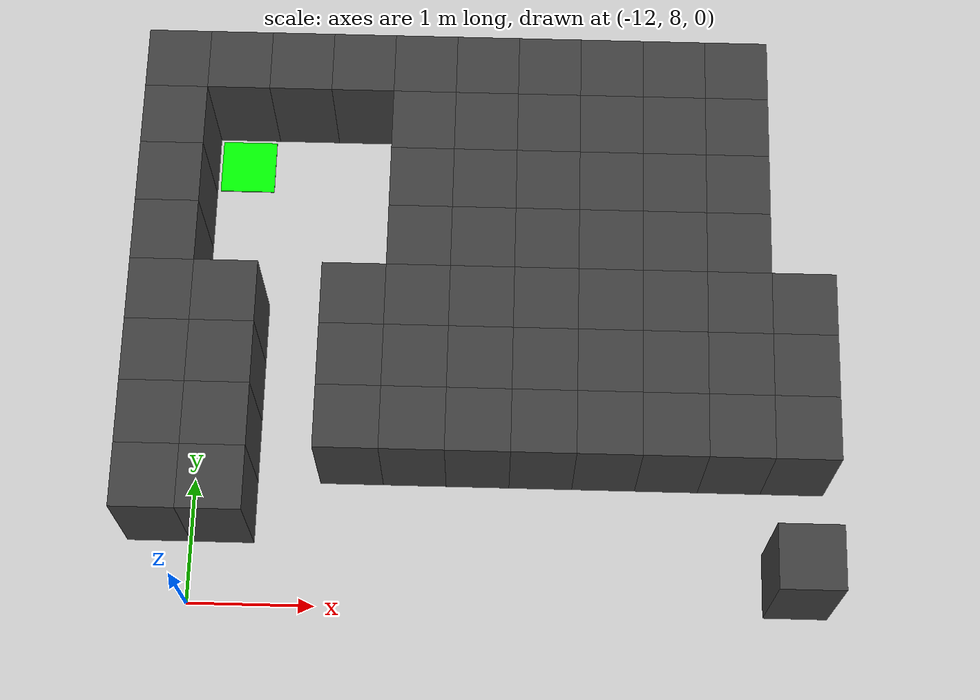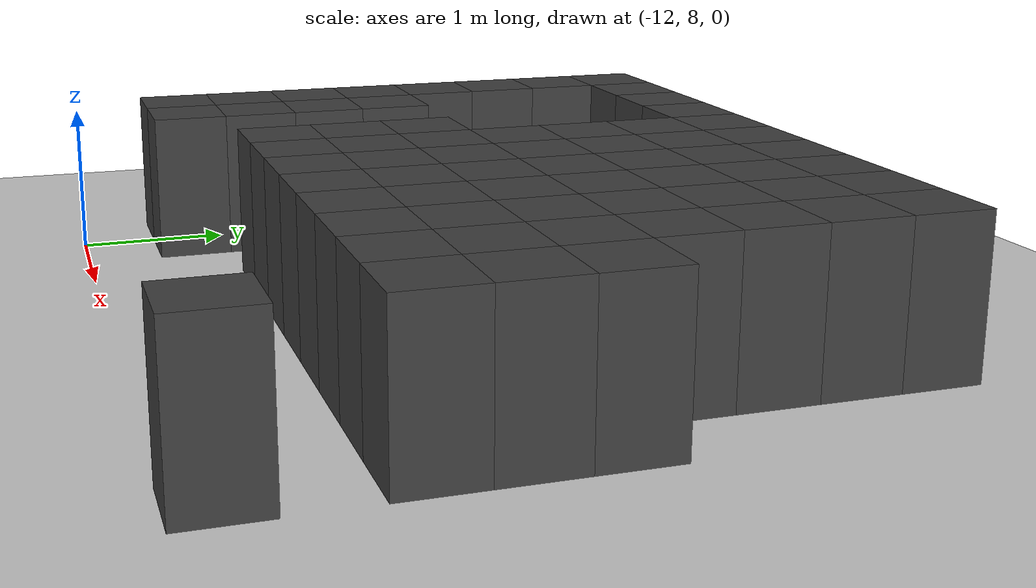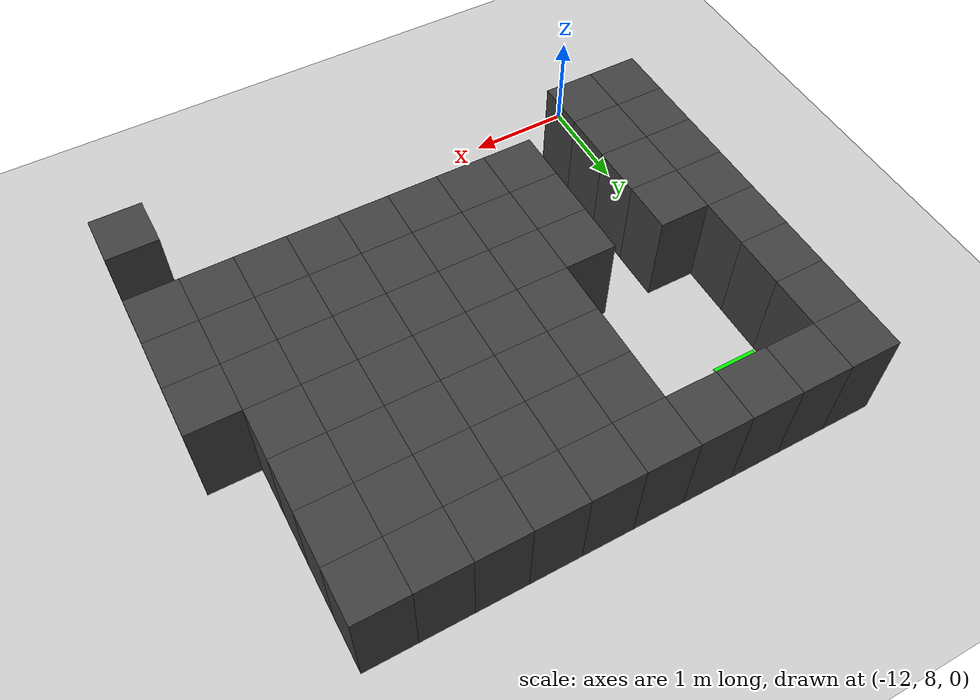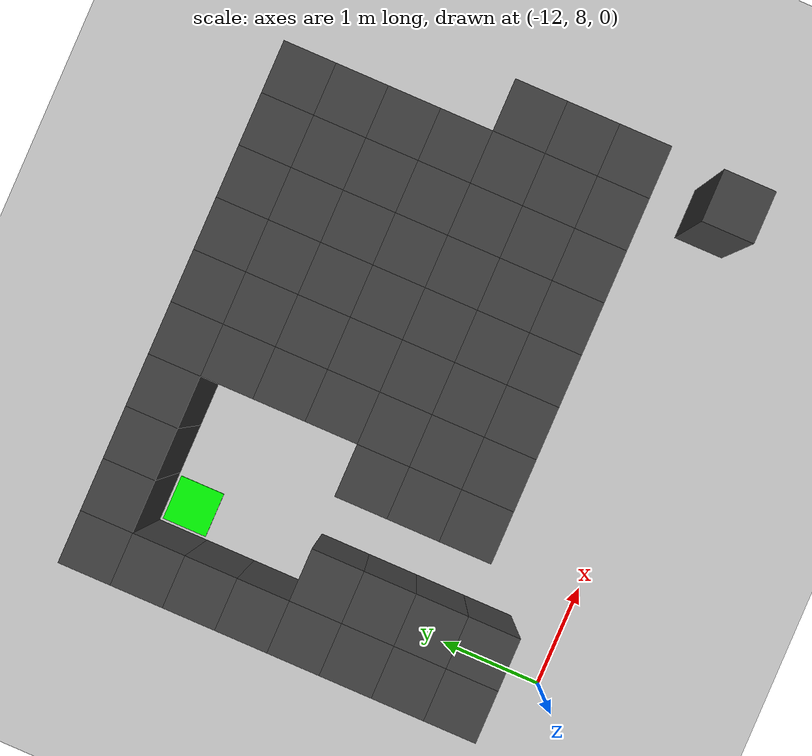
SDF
<sdf version="1.7">
 <world name="map_11515">
  <model name="ground_plane">
   <static>true</static>
   <link name="link">
    <collision name="collision">
     <geometry><plane><normal>0 0 1</normal><size>200 200</size></plane></geometry>
    </collision>
    <visual name="visual">
     <geometry><plane><normal>0 0 1</normal><size>200 200</size></plane></geometry>
     <material><ambient>0.8 0.8 0.8 1</ambient><diffuse>0.8 0.8 0.8 1</diffuse></material>
    </visual>
   </link>
  </model>
  <model name="maze_environment">
   <static>true</static>
   <link name="wall_0">
    <pose>-12.250 12.250 0.500 0 0 0</pose>
    <collision name="col"><geometry><box><size>0.5 0.5 1.0</size></box></geometry></collision>
    <visual name="vis">
     <geometry><box><size>0.5 0.5 1.0</size></box></geometry>
     <material><ambient>0.15 0.15 0.15 1</ambient><diffuse>0.25 0.25 0.25 1</diffuse></material>
    </visual>
   </link>
   <link name="wall_1">
    <pose>-11.750 12.250 0.500 0 0 0</pose>
    <collision name="col"><geometry><box><size>0.5 0.5 1.0</size></box></geometry></collision>
    <visual name="vis">
     <geometry><box><size>0.5 0.5 1.0</size></box></geometry>
     <material><ambient>0.15 0.15 0.15 1</ambient><diffuse>0.25 0.25 0.25 1</diffuse></material>
    </visual>
   </link>
   <link name="wall_2">
    <pose>-11.250 12.250 0.500 0 0 0</pose>
    <collision name="col"><geometry><box><size>0.5 0.5 1.0</size></box></geometry></collision>
    <visual name="vis">
     <geometry><box><size>0.5 0.5 1.0</size></box></geometry>
     <material><ambient>0.15 0.15 0.15 1</ambient><diffuse>0.25 0.25 0.25 1</diffuse></material>
    </visual>
   </link>
   <link name="wall_3">
    <pose>-10.750 12.250 0.500 0 0 0</pose>
    <collision name="col"><geometry><box><size>0.5 0.5 1.0</size></box></geometry></collision>
    <visual name="vis">
     <geometry><box><size>0.5 0.5 1.0</size></box></geometry>
     <material><ambient>0.15 0.15 0.15 1</ambient><diffuse>0.25 0.25 0.25 1</diffuse></material>
    </visual>
   </link>
   <link name="wall_4">
    <pose>-10.250 12.250 0.500 0 0 0</pose>
    <collision name="col"><geometry><box><size>0.5 0.5 1.0</size></box></geometry></collision>
    <visual name="vis">
     <geometry><box><size>0.5 0.5 1.0</size></box></geometry>
     <material><ambient>0.15 0.15 0.15 1</ambient><diffuse>0.25 0.25 0.25 1</diffuse></material>
    </visual>
   </link>
   <link name="wall_5">
    <pose>-9.750 12.250 0.500 0 0 0</pose>
    <collision name="col"><geometry><box><size>0.5 0.5 1.0</size></box></geometry></collision>
    <visual name="vis">
     <geometry><box><size>0.5 0.5 1.0</size></box></geometry>
     <material><ambient>0.15 0.15 0.15 1</ambient><diffuse>0.25 0.25 0.25 1</diffuse></material>
    </visual>
   </link>
   <link name="wall_6">
    <pose>-9.250 12.250 0.500 0 0 0</pose>
    <collision name="col"><geometry><box><size>0.5 0.5 1.0</size></box></geometry></collision>
    <visual name="vis">
     <geometry><box><size>0.5 0.5 1.0</size></box></geometry>
     <material><ambient>0.15 0.15 0.15 1</ambient><diffuse>0.25 0.25 0.25 1</diffuse></material>
    </visual>
   </link>
   <link name="wall_7">
    <pose>-8.750 12.250 0.500 0 0 0</pose>
    <collision name="col"><geometry><box><size>0.5 0.5 1.0</size></box></geometry></collision>
    <visual name="vis">
     <geometry><box><size>0.5 0.5 1.0</size></box></geometry>
     <material><ambient>0.15 0.15 0.15 1</ambient><diffuse>0.25 0.25 0.25 1</diffuse></material>
    </visual>
   </link>
   <link name="wall_8">
    <pose>-8.250 12.250 0.500 0 0 0</pose>
    <collision name="col"><geometry><box><size>0.5 0.5 1.0</size></box></geometry></collision>
    <visual name="vis">
     <geometry><box><size>0.5 0.5 1.0</size></box></geometry>
     <material><ambient>0.15 0.15 0.15 1</ambient><diffuse>0.25 0.25 0.25 1</diffuse></material>
    </visual>
   </link>
   <link name="wall_9">
    <pose>-7.750 12.250 0.500 0 0 0</pose>
    <collision name="col"><geometry><box><size>0.5 0.5 1.0</size></box></geometry></collision>
    <visual name="vis">
     <geometry><box><size>0.5 0.5 1.0</size></box></geometry>
     <material><ambient>0.15 0.15 0.15 1</ambient><diffuse>0.25 0.25 0.25 1</diffuse></material>
    </visual>
   </link>
   <link name="wall_50">
    <pose>-12.250 11.750 0.500 0 0 0</pose>
    <collision name="col"><geometry><box><size>0.5 0.5 1.0</size></box></geometry></collision>
    <visual name="vis">
     <geometry><box><size>0.5 0.5 1.0</size></box></geometry>
     <material><ambient>0.15 0.15 0.15 1</ambient><diffuse>0.25 0.25 0.25 1</diffuse></material>
    </visual>
   </link>
   <link name="wall_51">
    <pose>-10.250 11.750 0.500 0 0 0</pose>
    <collision name="col"><geometry><box><size>0.5 0.5 1.0</size></box></geometry></collision>
    <visual name="vis">
     <geometry><box><size>0.5 0.5 1.0</size></box></geometry>
     <material><ambient>0.15 0.15 0.15 1</ambient><diffuse>0.25 0.25 0.25 1</diffuse></material>
    </visual>
   </link>
   <link name="wall_52">
    <pose>-9.750 11.750 0.500 0 0 0</pose>
    <collision name="col"><geometry><box><size>0.5 0.5 1.0</size></box></geometry></collision>
    <visual name="vis">
     <geometry><box><size>0.5 0.5 1.0</size></box></geometry>
     <material><ambient>0.15 0.15 0.15 1</ambient><diffuse>0.25 0.25 0.25 1</diffuse></material>
    </visual>
   </link>
   <link name="wall_53">
    <pose>-9.250 11.750 0.500 0 0 0</pose>
    <collision name="col"><geometry><box><size>0.5 0.5 1.0</size></box></geometry></collision>
    <visual name="vis">
     <geometry><box><size>0.5 0.5 1.0</size></box></geometry>
     <material><ambient>0.15 0.15 0.15 1</ambient><diffuse>0.25 0.25 0.25 1</diffuse></material>
    </visual>
   </link>
   <link name="wall_54">
    <pose>-8.750 11.750 0.500 0 0 0</pose>
    <collision name="col"><geometry><box><size>0.5 0.5 1.0</size></box></geometry></collision>
    <visual name="vis">
     <geometry><box><size>0.5 0.5 1.0</size></box></geometry>
     <material><ambient>0.15 0.15 0.15 1</ambient><diffuse>0.25 0.25 0.25 1</diffuse></material>
    </visual>
   </link>
   <link name="wall_55">
    <pose>-8.250 11.750 0.500 0 0 0</pose>
    <collision name="col"><geometry><box><size>0.5 0.5 1.0</size></box></geometry></collision>
    <visual name="vis">
     <geometry><box><size>0.5 0.5 1.0</size></box></geometry>
     <material><ambient>0.15 0.15 0.15 1</ambient><diffuse>0.25 0.25 0.25 1</diffuse></material>
    </visual>
   </link>
   <link name="wall_56">
    <pose>-7.750 11.750 0.500 0 0 0</pose>
    <collision name="col"><geometry><box><size>0.5 0.5 1.0</size></box></geometry></collision>
    <visual name="vis">
     <geometry><box><size>0.5 0.5 1.0</size></box></geometry>
     <material><ambient>0.15 0.15 0.15 1</ambient><diffuse>0.25 0.25 0.25 1</diffuse></material>
    </visual>
   </link>
   <link name="wall_97">
    <pose>-12.250 11.250 0.500 0 0 0</pose>
    <collision name="col"><geometry><box><size>0.5 0.5 1.0</size></box></geometry></collision>
    <visual name="vis">
     <geometry><box><size>0.5 0.5 1.0</size></box></geometry>
     <material><ambient>0.15 0.15 0.15 1</ambient><diffuse>0.25 0.25 0.25 1</diffuse></material>
    </visual>
   </link>
   <link name="wall_98">
    <pose>-10.250 11.250 0.500 0 0 0</pose>
    <collision name="col"><geometry><box><size>0.5 0.5 1.0</size></box></geometry></collision>
    <visual name="vis">
     <geometry><box><size>0.5 0.5 1.0</size></box></geometry>
     <material><ambient>0.15 0.15 0.15 1</ambient><diffuse>0.25 0.25 0.25 1</diffuse></material>
    </visual>
   </link>
   <link name="wall_99">
    <pose>-9.750 11.250 0.500 0 0 0</pose>
    <collision name="col"><geometry><box><size>0.5 0.5 1.0</size></box></geometry></collision>
    <visual name="vis">
     <geometry><box><size>0.5 0.5 1.0</size></box></geometry>
     <material><ambient>0.15 0.15 0.15 1</ambient><diffuse>0.25 0.25 0.25 1</diffuse></material>
    </visual>
   </link>
   <link name="wall_100">
    <pose>-9.250 11.250 0.500 0 0 0</pose>
    <collision name="col"><geometry><box><size>0.5 0.5 1.0</size></box></geometry></collision>
    <visual name="vis">
     <geometry><box><size>0.5 0.5 1.0</size></box></geometry>
     <material><ambient>0.15 0.15 0.15 1</ambient><diffuse>0.25 0.25 0.25 1</diffuse></material>
    </visual>
   </link>
   <link name="wall_101">
    <pose>-8.750 11.250 0.500 0 0 0</pose>
    <collision name="col"><geometry><box><size>0.5 0.5 1.0</size></box></geometry></collision>
    <visual name="vis">
     <geometry><box><size>0.5 0.5 1.0</size></box></geometry>
     <material><ambient>0.15 0.15 0.15 1</ambient><diffuse>0.25 0.25 0.25 1</diffuse></material>
    </visual>
   </link>
   <link name="wall_102">
    <pose>-8.250 11.250 0.500 0 0 0</pose>
    <collision name="col"><geometry><box><size>0.5 0.5 1.0</size></box></geometry></collision>
    <visual name="vis">
     <geometry><box><size>0.5 0.5 1.0</size></box></geometry>
     <material><ambient>0.15 0.15 0.15 1</ambient><diffuse>0.25 0.25 0.25 1</diffuse></material>
    </visual>
   </link>
   <link name="wall_103">
    <pose>-7.750 11.250 0.500 0 0 0</pose>
    <collision name="col"><geometry><box><size>0.5 0.5 1.0</size></box></geometry></collision>
    <visual name="vis">
     <geometry><box><size>0.5 0.5 1.0</size></box></geometry>
     <material><ambient>0.15 0.15 0.15 1</ambient><diffuse>0.25 0.25 0.25 1</diffuse></material>
    </visual>
   </link>
   <link name="wall_144">
    <pose>-12.250 10.750 0.500 0 0 0</pose>
    <collision name="col"><geometry><box><size>0.5 0.5 1.0</size></box></geometry></collision>
    <visual name="vis">
     <geometry><box><size>0.5 0.5 1.0</size></box></geometry>
     <material><ambient>0.15 0.15 0.15 1</ambient><diffuse>0.25 0.25 0.25 1</diffuse></material>
    </visual>
   </link>
   <link name="wall_145">
    <pose>-10.250 10.750 0.500 0 0 0</pose>
    <collision name="col"><geometry><box><size>0.5 0.5 1.0</size></box></geometry></collision>
    <visual name="vis">
     <geometry><box><size>0.5 0.5 1.0</size></box></geometry>
     <material><ambient>0.15 0.15 0.15 1</ambient><diffuse>0.25 0.25 0.25 1</diffuse></material>
    </visual>
   </link>
   <link name="wall_146">
    <pose>-9.750 10.750 0.500 0 0 0</pose>
    <collision name="col"><geometry><box><size>0.5 0.5 1.0</size></box></geometry></collision>
    <visual name="vis">
     <geometry><box><size>0.5 0.5 1.0</size></box></geometry>
     <material><ambient>0.15 0.15 0.15 1</ambient><diffuse>0.25 0.25 0.25 1</diffuse></material>
    </visual>
   </link>
   <link name="wall_147">
    <pose>-9.250 10.750 0.500 0 0 0</pose>
    <collision name="col"><geometry><box><size>0.5 0.5 1.0</size></box></geometry></collision>
    <visual name="vis">
     <geometry><box><size>0.5 0.5 1.0</size></box></geometry>
     <material><ambient>0.15 0.15 0.15 1</ambient><diffuse>0.25 0.25 0.25 1</diffuse></material>
    </visual>
   </link>
   <link name="wall_148">
    <pose>-8.750 10.750 0.500 0 0 0</pose>
    <collision name="col"><geometry><box><size>0.5 0.5 1.0</size></box></geometry></collision>
    <visual name="vis">
     <geometry><box><size>0.5 0.5 1.0</size></box></geometry>
     <material><ambient>0.15 0.15 0.15 1</ambient><diffuse>0.25 0.25 0.25 1</diffuse></material>
    </visual>
   </link>
   <link name="wall_149">
    <pose>-8.250 10.750 0.500 0 0 0</pose>
    <collision name="col"><geometry><box><size>0.5 0.5 1.0</size></box></geometry></collision>
    <visual name="vis">
     <geometry><box><size>0.5 0.5 1.0</size></box></geometry>
     <material><ambient>0.15 0.15 0.15 1</ambient><diffuse>0.25 0.25 0.25 1</diffuse></material>
    </visual>
   </link>
   <link name="wall_150">
    <pose>-7.750 10.750 0.500 0 0 0</pose>
    <collision name="col"><geometry><box><size>0.5 0.5 1.0</size></box></geometry></collision>
    <visual name="vis">
     <geometry><box><size>0.5 0.5 1.0</size></box></geometry>
     <material><ambient>0.15 0.15 0.15 1</ambient><diffuse>0.25 0.25 0.25 1</diffuse></material>
    </visual>
   </link>
   <link name="wall_191">
    <pose>-12.250 10.250 0.500 0 0 0</pose>
    <collision name="col"><geometry><box><size>0.5 0.5 1.0</size></box></geometry></collision>
    <visual name="vis">
     <geometry><box><size>0.5 0.5 1.0</size></box></geometry>
     <material><ambient>0.15 0.15 0.15 1</ambient><diffuse>0.25 0.25 0.25 1</diffuse></material>
    </visual>
   </link>
   <link name="wall_192">
    <pose>-11.750 10.250 0.500 0 0 0</pose>
    <collision name="col"><geometry><box><size>0.5 0.5 1.0</size></box></geometry></collision>
    <visual name="vis">
     <geometry><box><size>0.5 0.5 1.0</size></box></geometry>
     <material><ambient>0.15 0.15 0.15 1</ambient><diffuse>0.25 0.25 0.25 1</diffuse></material>
    </visual>
   </link>
   <link name="wall_193">
    <pose>-10.750 10.250 0.500 0 0 0</pose>
    <collision name="col"><geometry><box><size>0.5 0.5 1.0</size></box></geometry></collision>
    <visual name="vis">
     <geometry><box><size>0.5 0.5 1.0</size></box></geometry>
     <material><ambient>0.15 0.15 0.15 1</ambient><diffuse>0.25 0.25 0.25 1</diffuse></material>
    </visual>
   </link>
   <link name="wall_194">
    <pose>-10.250 10.250 0.500 0 0 0</pose>
    <collision name="col"><geometry><box><size>0.5 0.5 1.0</size></box></geometry></collision>
    <visual name="vis">
     <geometry><box><size>0.5 0.5 1.0</size></box></geometry>
     <material><ambient>0.15 0.15 0.15 1</ambient><diffuse>0.25 0.25 0.25 1</diffuse></material>
    </visual>
   </link>
   <link name="wall_195">
    <pose>-9.750 10.250 0.500 0 0 0</pose>
    <collision name="col"><geometry><box><size>0.5 0.5 1.0</size></box></geometry></collision>
    <visual name="vis">
     <geometry><box><size>0.5 0.5 1.0</size></box></geometry>
     <material><ambient>0.15 0.15 0.15 1</ambient><diffuse>0.25 0.25 0.25 1</diffuse></material>
    </visual>
   </link>
   <link name="wall_196">
    <pose>-9.250 10.250 0.500 0 0 0</pose>
    <collision name="col"><geometry><box><size>0.5 0.5 1.0</size></box></geometry></collision>
    <visual name="vis">
     <geometry><box><size>0.5 0.5 1.0</size></box></geometry>
     <material><ambient>0.15 0.15 0.15 1</ambient><diffuse>0.25 0.25 0.25 1</diffuse></material>
    </visual>
   </link>
   <link name="wall_197">
    <pose>-8.750 10.250 0.500 0 0 0</pose>
    <collision name="col"><geometry><box><size>0.5 0.5 1.0</size></box></geometry></collision>
    <visual name="vis">
     <geometry><box><size>0.5 0.5 1.0</size></box></geometry>
     <material><ambient>0.15 0.15 0.15 1</ambient><diffuse>0.25 0.25 0.25 1</diffuse></material>
    </visual>
   </link>
   <link name="wall_198">
    <pose>-8.250 10.250 0.500 0 0 0</pose>
    <collision name="col"><geometry><box><size>0.5 0.5 1.0</size></box></geometry></collision>
    <visual name="vis">
     <geometry><box><size>0.5 0.5 1.0</size></box></geometry>
     <material><ambient>0.15 0.15 0.15 1</ambient><diffuse>0.25 0.25 0.25 1</diffuse></material>
    </visual>
   </link>
   <link name="wall_199">
    <pose>-7.750 10.250 0.500 0 0 0</pose>
    <collision name="col"><geometry><box><size>0.5 0.5 1.0</size></box></geometry></collision>
    <visual name="vis">
     <geometry><box><size>0.5 0.5 1.0</size></box></geometry>
     <material><ambient>0.15 0.15 0.15 1</ambient><diffuse>0.25 0.25 0.25 1</diffuse></material>
    </visual>
   </link>
   <link name="wall_200">
    <pose>-7.250 10.250 0.500 0 0 0</pose>
    <collision name="col"><geometry><box><size>0.5 0.5 1.0</size></box></geometry></collision>
    <visual name="vis">
     <geometry><box><size>0.5 0.5 1.0</size></box></geometry>
     <material><ambient>0.15 0.15 0.15 1</ambient><diffuse>0.25 0.25 0.25 1</diffuse></material>
    </visual>
   </link>
   <link name="wall_240">
    <pose>-12.250 9.750 0.500 0 0 0</pose>
    <collision name="col"><geometry><box><size>0.5 0.5 1.0</size></box></geometry></collision>
    <visual name="vis">
     <geometry><box><size>0.5 0.5 1.0</size></box></geometry>
     <material><ambient>0.15 0.15 0.15 1</ambient><diffuse>0.25 0.25 0.25 1</diffuse></material>
    </visual>
   </link>
   <link name="wall_241">
    <pose>-11.750 9.750 0.500 0 0 0</pose>
    <collision name="col"><geometry><box><size>0.5 0.5 1.0</size></box></geometry></collision>
    <visual name="vis">
     <geometry><box><size>0.5 0.5 1.0</size></box></geometry>
     <material><ambient>0.15 0.15 0.15 1</ambient><diffuse>0.25 0.25 0.25 1</diffuse></material>
    </visual>
   </link>
   <link name="wall_242">
    <pose>-10.750 9.750 0.500 0 0 0</pose>
    <collision name="col"><geometry><box><size>0.5 0.5 1.0</size></box></geometry></collision>
    <visual name="vis">
     <geometry><box><size>0.5 0.5 1.0</size></box></geometry>
     <material><ambient>0.15 0.15 0.15 1</ambient><diffuse>0.25 0.25 0.25 1</diffuse></material>
    </visual>
   </link>
   <link name="wall_243">
    <pose>-10.250 9.750 0.500 0 0 0</pose>
    <collision name="col"><geometry><box><size>0.5 0.5 1.0</size></box></geometry></collision>
    <visual name="vis">
     <geometry><box><size>0.5 0.5 1.0</size></box></geometry>
     <material><ambient>0.15 0.15 0.15 1</ambient><diffuse>0.25 0.25 0.25 1</diffuse></material>
    </visual>
   </link>
   <link name="wall_244">
    <pose>-9.750 9.750 0.500 0 0 0</pose>
    <collision name="col"><geometry><box><size>0.5 0.5 1.0</size></box></geometry></collision>
    <visual name="vis">
     <geometry><box><size>0.5 0.5 1.0</size></box></geometry>
     <material><ambient>0.15 0.15 0.15 1</ambient><diffuse>0.25 0.25 0.25 1</diffuse></material>
    </visual>
   </link>
   <link name="wall_245">
    <pose>-9.250 9.750 0.500 0 0 0</pose>
    <collision name="col"><geometry><box><size>0.5 0.5 1.0</size></box></geometry></collision>
    <visual name="vis">
     <geometry><box><size>0.5 0.5 1.0</size></box></geometry>
     <material><ambient>0.15 0.15 0.15 1</ambient><diffuse>0.25 0.25 0.25 1</diffuse></material>
    </visual>
   </link>
   <link name="wall_246">
    <pose>-8.750 9.750 0.500 0 0 0</pose>
    <collision name="col"><geometry><box><size>0.5 0.5 1.0</size></box></geometry></collision>
    <visual name="vis">
     <geometry><box><size>0.5 0.5 1.0</size></box></geometry>
     <material><ambient>0.15 0.15 0.15 1</ambient><diffuse>0.25 0.25 0.25 1</diffuse></material>
    </visual>
   </link>
   <link name="wall_247">
    <pose>-8.250 9.750 0.500 0 0 0</pose>
    <collision name="col"><geometry><box><size>0.5 0.5 1.0</size></box></geometry></collision>
    <visual name="vis">
     <geometry><box><size>0.5 0.5 1.0</size></box></geometry>
     <material><ambient>0.15 0.15 0.15 1</ambient><diffuse>0.25 0.25 0.25 1</diffuse></material>
    </visual>
   </link>
   <link name="wall_248">
    <pose>-7.750 9.750 0.500 0 0 0</pose>
    <collision name="col"><geometry><box><size>0.5 0.5 1.0</size></box></geometry></collision>
    <visual name="vis">
     <geometry><box><size>0.5 0.5 1.0</size></box></geometry>
     <material><ambient>0.15 0.15 0.15 1</ambient><diffuse>0.25 0.25 0.25 1</diffuse></material>
    </visual>
   </link>
   <link name="wall_249">
    <pose>-7.250 9.750 0.500 0 0 0</pose>
    <collision name="col"><geometry><box><size>0.5 0.5 1.0</size></box></geometry></collision>
    <visual name="vis">
     <geometry><box><size>0.5 0.5 1.0</size></box></geometry>
     <material><ambient>0.15 0.15 0.15 1</ambient><diffuse>0.25 0.25 0.25 1</diffuse></material>
    </visual>
   </link>
   <link name="wall_283">
    <pose>-12.250 9.250 0.500 0 0 0</pose>
    <collision name="col"><geometry><box><size>0.5 0.5 1.0</size></box></geometry></collision>
    <visual name="vis">
     <geometry><box><size>0.5 0.5 1.0</size></box></geometry>
     <material><ambient>0.15 0.15 0.15 1</ambient><diffuse>0.25 0.25 0.25 1</diffuse></material>
    </visual>
   </link>
   <link name="wall_284">
    <pose>-11.750 9.250 0.500 0 0 0</pose>
    <collision name="col"><geometry><box><size>0.5 0.5 1.0</size></box></geometry></collision>
    <visual name="vis">
     <geometry><box><size>0.5 0.5 1.0</size></box></geometry>
     <material><ambient>0.15 0.15 0.15 1</ambient><diffuse>0.25 0.25 0.25 1</diffuse></material>
    </visual>
   </link>
   <link name="wall_285">
    <pose>-10.750 9.250 0.500 0 0 0</pose>
    <collision name="col"><geometry><box><size>0.5 0.5 1.0</size></box></geometry></collision>
    <visual name="vis">
     <geometry><box><size>0.5 0.5 1.0</size></box></geometry>
     <material><ambient>0.15 0.15 0.15 1</ambient><diffuse>0.25 0.25 0.25 1</diffuse></material>
    </visual>
   </link>
   <link name="wall_286">
    <pose>-10.250 9.250 0.500 0 0 0</pose>
    <collision name="col"><geometry><box><size>0.5 0.5 1.0</size></box></geometry></collision>
    <visual name="vis">
     <geometry><box><size>0.5 0.5 1.0</size></box></geometry>
     <material><ambient>0.15 0.15 0.15 1</ambient><diffuse>0.25 0.25 0.25 1</diffuse></material>
    </visual>
   </link>
   <link name="wall_287">
    <pose>-9.750 9.250 0.500 0 0 0</pose>
    <collision name="col"><geometry><box><size>0.5 0.5 1.0</size></box></geometry></collision>
    <visual name="vis">
     <geometry><box><size>0.5 0.5 1.0</size></box></geometry>
     <material><ambient>0.15 0.15 0.15 1</ambient><diffuse>0.25 0.25 0.25 1</diffuse></material>
    </visual>
   </link>
   <link name="wall_288">
    <pose>-9.250 9.250 0.500 0 0 0</pose>
    <collision name="col"><geometry><box><size>0.5 0.5 1.0</size></box></geometry></collision>
    <visual name="vis">
     <geometry><box><size>0.5 0.5 1.0</size></box></geometry>
     <material><ambient>0.15 0.15 0.15 1</ambient><diffuse>0.25 0.25 0.25 1</diffuse></material>
    </visual>
   </link>
   <link name="wall_289">
    <pose>-8.750 9.250 0.500 0 0 0</pose>
    <collision name="col"><geometry><box><size>0.5 0.5 1.0</size></box></geometry></collision>
    <visual name="vis">
     <geometry><box><size>0.5 0.5 1.0</size></box></geometry>
     <material><ambient>0.15 0.15 0.15 1</ambient><diffuse>0.25 0.25 0.25 1</diffuse></material>
    </visual>
   </link>
   <link name="wall_290">
    <pose>-8.250 9.250 0.500 0 0 0</pose>
    <collision name="col"><geometry><box><size>0.5 0.5 1.0</size></box></geometry></collision>
    <visual name="vis">
     <geometry><box><size>0.5 0.5 1.0</size></box></geometry>
     <material><ambient>0.15 0.15 0.15 1</ambient><diffuse>0.25 0.25 0.25 1</diffuse></material>
    </visual>
   </link>
   <link name="wall_291">
    <pose>-7.750 9.250 0.500 0 0 0</pose>
    <collision name="col"><geometry><box><size>0.5 0.5 1.0</size></box></geometry></collision>
    <visual name="vis">
     <geometry><box><size>0.5 0.5 1.0</size></box></geometry>
     <material><ambient>0.15 0.15 0.15 1</ambient><diffuse>0.25 0.25 0.25 1</diffuse></material>
    </visual>
   </link>
   <link name="wall_292">
    <pose>-7.250 9.250 0.500 0 0 0</pose>
    <collision name="col"><geometry><box><size>0.5 0.5 1.0</size></box></geometry></collision>
    <visual name="vis">
     <geometry><box><size>0.5 0.5 1.0</size></box></geometry>
     <material><ambient>0.15 0.15 0.15 1</ambient><diffuse>0.25 0.25 0.25 1</diffuse></material>
    </visual>
   </link>
   <link name="wall_326">
    <pose>-12.250 8.750 0.500 0 0 0</pose>
    <collision name="col"><geometry><box><size>0.5 0.5 1.0</size></box></geometry></collision>
    <visual name="vis">
     <geometry><box><size>0.5 0.5 1.0</size></box></geometry>
     <material><ambient>0.15 0.15 0.15 1</ambient><diffuse>0.25 0.25 0.25 1</diffuse></material>
    </visual>
   </link>
   <link name="wall_327">
    <pose>-11.750 8.750 0.500 0 0 0</pose>
    <collision name="col"><geometry><box><size>0.5 0.5 1.0</size></box></geometry></collision>
    <visual name="vis">
     <geometry><box><size>0.5 0.5 1.0</size></box></geometry>
     <material><ambient>0.15 0.15 0.15 1</ambient><diffuse>0.25 0.25 0.25 1</diffuse></material>
    </visual>
   </link>
   <link name="wall_364">
    <pose>-7.250 8.250 0.500 0 0 0</pose>
    <collision name="col"><geometry><box><size>0.5 0.5 1.0</size></box></geometry></collision>
    <visual name="vis">
     <geometry><box><size>0.5 0.5 1.0</size></box></geometry>
     <material><ambient>0.15 0.15 0.15 1</ambient><diffuse>0.25 0.25 0.25 1</diffuse></material>
    </visual>
   </link>
   <link name="start_zone">
    <pose>-11.750 11.750 0.005 0 0 0</pose>
    <visual name="vis">
     <geometry><box><size>0.45 0.45 0.01</size></box></geometry>
     <material>
      <ambient>0.0 1.0 0.0 1</ambient>
      <diffuse>0.0 1.0 0.0 1</diffuse>
      <emissive>0.00 0.60 0.00 1</emissive>
     </material>
    </visual>
   </link>
  </model>
 </world>
</sdf>
